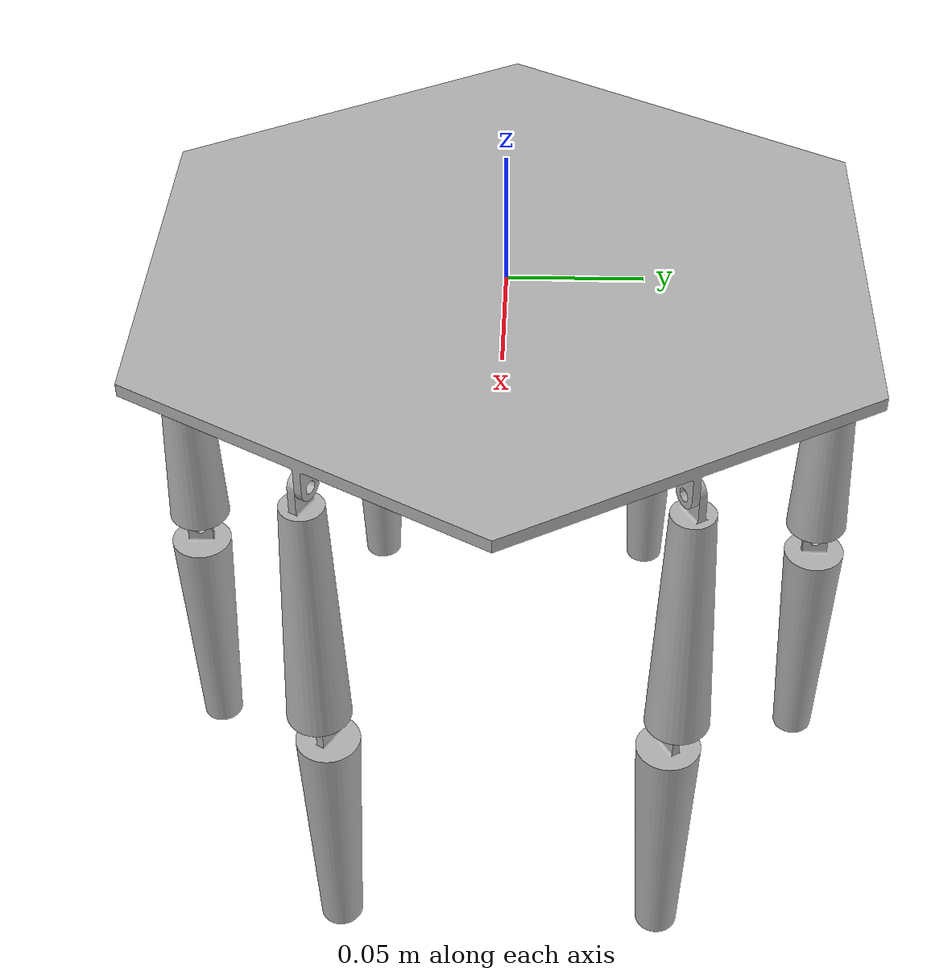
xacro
<?xml version="1.0" ?>
<robot name="crapdesign1" xmlns:xacro="http://www.ros.org/wiki/xacro">

<xacro:include filename="$(find crapdesign1_description)/urdf/materials.xacro" />
<xacro:include filename="$(find crapdesign1_description)/urdf/crapdesign1.trans" />
<xacro:include filename="$(find crapdesign1_description)/urdf/crapdesign1.gazebo" />
<link name="base_link">
  <inertial>
    <origin rpy="0 0 0" xyz="-2.7797920695261423e-16 1.6275392110627996e-16 0.2408070750718569"/>
    <mass value="2.311532628093681"/>
    <inertia ixx="0.010895" ixy="0.0" ixz="0.0" iyy="0.010895" iyz="0.0" izz="0.021777"/>
  </inertial>
  <visual>
    <origin rpy="0 0 0" xyz="0 0 0"/>
    <geometry>
      <mesh filename="package://crapdesign1_description/meshes/base_link.stl" scale="0.001 0.001 0.001"/>
    </geometry>
    <material name="silver"/>
  </visual>
  <collision>
    <origin rpy="0 0 0" xyz="0 0 0"/>
    <geometry>
      <mesh filename="package://crapdesign1_description/meshes/base_link.stl" scale="0.001 0.001 0.001"/>
    </geometry>
  </collision>
</link>

<link name="lowerleg1_1">
  <inertial>
    <origin rpy="0 0 0" xyz="0.0014999999999999142 1.8978996156604477e-07 -0.049023526239640056"/>
    <mass value="0.25197878483643155"/>
    <inertia ixx="0.000211" ixy="0.0" ixz="-0.0" iyy="0.000211" iyz="0.0" izz="1.3e-05"/>
  </inertial>
  <visual>
    <origin rpy="0 0 0" xyz="0.0015 0.124904 -0.112373"/>
    <geometry>
      <mesh filename="package://crapdesign1_description/meshes/lowerleg1_1.stl" scale="0.001 0.001 0.001"/>
    </geometry>
    <material name="silver"/>
  </visual>
  <collision>
    <origin rpy="0 0 0" xyz="0.0015 0.124904 -0.112373"/>
    <geometry>
      <mesh filename="package://crapdesign1_description/meshes/lowerleg1_1.stl" scale="0.001 0.001 0.001"/>
    </geometry>
  </collision>
</link>

<link name="upperleg2_1">
  <inertial>
    <origin rpy="0 0 0" xyz="0.0007498726713631859 0.0012990948949807915 -0.04902352623964014"/>
    <mass value="0.2519787848364315"/>
    <inertia ixx="0.000211" ixy="0.0" ixz="-0.0" iyy="0.000211" iyz="0.0" izz="1.3e-05"/>
  </inertial>
  <visual>
    <origin rpy="0 0 0" xyz="-0.10742 0.063751 -0.112373"/>
    <geometry>
      <mesh filename="package://crapdesign1_description/meshes/upperleg2_1.stl" scale="0.001 0.001 0.001"/>
    </geometry>
    <material name="silver"/>
  </visual>
  <collision>
    <origin rpy="0 0 0" xyz="-0.10742 0.063751 -0.112373"/>
    <geometry>
      <mesh filename="package://crapdesign1_description/meshes/upperleg2_1.stl" scale="0.001 0.001 0.001"/>
    </geometry>
  </collision>
</link>

<link name="lowerleg4_1">
  <inertial>
    <origin rpy="0 0 0" xyz="0.0007501273286365934 -0.0012989051050190312 -0.04902352623964018"/>
    <mass value="0.25197878483643155"/>
    <inertia ixx="0.000211" ixy="-0.0" ixz="0.0" iyy="0.000211" iyz="0.0" izz="1.3e-05"/>
  </inertial>
  <visual>
    <origin rpy="0 0 0" xyz="0.10892 0.061153 -0.112373"/>
    <geometry>
      <mesh filename="package://crapdesign1_description/meshes/lowerleg4_1.stl" scale="0.001 0.001 0.001"/>
    </geometry>
    <material name="silver"/>
  </visual>
  <collision>
    <origin rpy="0 0 0" xyz="0.10892 0.061153 -0.112373"/>
    <geometry>
      <mesh filename="package://crapdesign1_description/meshes/lowerleg4_1.stl" scale="0.001 0.001 0.001"/>
    </geometry>
  </collision>
</link>

<link name="lowerleg3_1">
  <inertial>
    <origin rpy="0 0 0" xyz="0.0007498732907923605 -0.0012990945373532112 -0.04902352623964021"/>
    <mass value="0.2519787848364316"/>
    <inertia ixx="0.000211" ixy="-0.0" ixz="0.0" iyy="0.000211" iyz="0.0" izz="1.3e-05"/>
  </inertial>
  <visual>
    <origin rpy="0 0 0" xyz="-0.10742 -0.063751 -0.112373"/>
    <geometry>
      <mesh filename="package://crapdesign1_description/meshes/lowerleg3_1.stl" scale="0.001 0.001 0.001"/>
    </geometry>
    <material name="silver"/>
  </visual>
  <collision>
    <origin rpy="0 0 0" xyz="-0.10742 -0.063751 -0.112373"/>
    <geometry>
      <mesh filename="package://crapdesign1_description/meshes/lowerleg3_1.stl" scale="0.001 0.001 0.001"/>
    </geometry>
  </collision>
</link>

<link name="lowerleg6_1">
  <inertial>
    <origin rpy="0 0 0" xyz="0.0014999999999999645 -1.8907470664131232e-07 -0.04902352623964021"/>
    <mass value="0.25197878483643155"/>
    <inertia ixx="0.000211" ixy="-0.0" ixz="-0.0" iyy="0.000211" iyz="0.0" izz="1.3e-05"/>
  </inertial>
  <visual>
    <origin rpy="0 0 0" xyz="0.0015 -0.124904 -0.112373"/>
    <geometry>
      <mesh filename="package://crapdesign1_description/meshes/lowerleg6_1.stl" scale="0.001 0.001 0.001"/>
    </geometry>
    <material name="silver"/>
  </visual>
  <collision>
    <origin rpy="0 0 0" xyz="0.0015 -0.124904 -0.112373"/>
    <geometry>
      <mesh filename="package://crapdesign1_description/meshes/lowerleg6_1.stl" scale="0.001 0.001 0.001"/>
    </geometry>
  </collision>
</link>

<link name="lowerleg5_1">
  <inertial>
    <origin rpy="0 0 0" xyz="0.0007501267092076824 0.0012989054626466323 -0.049023526239640236"/>
    <mass value="0.25197878483643155"/>
    <inertia ixx="0.000211" ixy="0.0" ixz="-0.0" iyy="0.000211" iyz="0.0" izz="1.3e-05"/>
  </inertial>
  <visual>
    <origin rpy="0 0 0" xyz="0.10892 -0.061153 -0.112373"/>
    <geometry>
      <mesh filename="package://crapdesign1_description/meshes/lowerleg5_1.stl" scale="0.001 0.001 0.001"/>
    </geometry>
    <material name="silver"/>
  </visual>
  <collision>
    <origin rpy="0 0 0" xyz="0.10892 -0.061153 -0.112373"/>
    <geometry>
      <mesh filename="package://crapdesign1_description/meshes/lowerleg5_1.stl" scale="0.001 0.001 0.001"/>
    </geometry>
  </collision>
</link>

<link name="upperleg6_1">
  <inertial>
    <origin rpy="0 0 0" xyz="-0.001500000000000007 -1.8907870720508146e-07 -0.06626642411830211"/>
    <mass value="0.25482988143393964"/>
    <inertia ixx="0.000223" ixy="-0.0" ixz="0.0" iyy="0.000222" iyz="0.0" izz="1.3e-05"/>
  </inertial>
  <visual>
    <origin rpy="0 0 0" xyz="0.0015 -0.124904 -0.228373"/>
    <geometry>
      <mesh filename="package://crapdesign1_description/meshes/upperleg6_1.stl" scale="0.001 0.001 0.001"/>
    </geometry>
    <material name="silver"/>
  </visual>
  <collision>
    <origin rpy="0 0 0" xyz="0.0015 -0.124904 -0.228373"/>
    <geometry>
      <mesh filename="package://crapdesign1_description/meshes/upperleg6_1.stl" scale="0.001 0.001 0.001"/>
    </geometry>
  </collision>
</link>

<link name="upperleg3_1">
  <inertial>
    <origin rpy="0 0 0" xyz="-0.0007501267126726469 0.001298981671999641 -0.0662664241183023"/>
    <mass value="0.2548298814339397"/>
    <inertia ixx="0.000223" ixy="-0.0" ixz="0.0" iyy="0.000223" iyz="0.0" izz="1.3e-05"/>
  </inertial>
  <visual>
    <origin rpy="0 0 0" xyz="-0.10742 -0.063751 -0.228373"/>
    <geometry>
      <mesh filename="package://crapdesign1_description/meshes/upperleg3_1.stl" scale="0.001 0.001 0.001"/>
    </geometry>
    <material name="silver"/>
  </visual>
  <collision>
    <origin rpy="0 0 0" xyz="-0.10742 -0.063751 -0.228373"/>
    <geometry>
      <mesh filename="package://crapdesign1_description/meshes/upperleg3_1.stl" scale="0.001 0.001 0.001"/>
    </geometry>
  </collision>
</link>

<link name="upperleg1_1">
  <inertial>
    <origin rpy="0 0 0" xyz="-0.0015000000000000438 1.8978596048879748e-07 -0.06626642411830236"/>
    <mass value="0.25482988143393986"/>
    <inertia ixx="0.000223" ixy="0.0" ixz="-0.0" iyy="0.000222" iyz="0.0" izz="1.3e-05"/>
  </inertial>
  <visual>
    <origin rpy="0 0 0" xyz="0.0015 0.124904 -0.228373"/>
    <geometry>
      <mesh filename="package://crapdesign1_description/meshes/upperleg1_1.stl" scale="0.001 0.001 0.001"/>
    </geometry>
    <material name="silver"/>
  </visual>
  <collision>
    <origin rpy="0 0 0" xyz="0.0015 0.124904 -0.228373"/>
    <geometry>
      <mesh filename="package://crapdesign1_description/meshes/upperleg1_1.stl" scale="0.001 0.001 0.001"/>
    </geometry>
  </collision>
</link>

<link name="upperleg5_1">
  <inertial>
    <origin rpy="0 0 0" xyz="-0.000749873287327521 -0.001299170750706527 -0.06626642411830222"/>
    <mass value="0.25482988143393964"/>
    <inertia ixx="0.000223" ixy="0.0" ixz="-0.0" iyy="0.000223" iyz="0.0" izz="1.3e-05"/>
  </inertial>
  <visual>
    <origin rpy="0 0 0" xyz="0.10892 -0.061153 -0.228373"/>
    <geometry>
      <mesh filename="package://crapdesign1_description/meshes/upperleg5_1.stl" scale="0.001 0.001 0.001"/>
    </geometry>
    <material name="silver"/>
  </visual>
  <collision>
    <origin rpy="0 0 0" xyz="0.10892 -0.061153 -0.228373"/>
    <geometry>
      <mesh filename="package://crapdesign1_description/meshes/upperleg5_1.stl" scale="0.001 0.001 0.001"/>
    </geometry>
  </collision>
</link>

<link name="lowerleg2_1">
  <inertial>
    <origin rpy="0 0 0" xyz="-0.0007501273251715596 -0.0012989813183730409 -0.0662664241183025"/>
    <mass value="0.2548298814339398"/>
    <inertia ixx="0.000223" ixy="0.0" ixz="-0.0" iyy="0.000223" iyz="0.0" izz="1.3e-05"/>
  </inertial>
  <visual>
    <origin rpy="0 0 0" xyz="-0.10742 0.063751 -0.228373"/>
    <geometry>
      <mesh filename="package://crapdesign1_description/meshes/lowerleg2_1.stl" scale="0.001 0.001 0.001"/>
    </geometry>
    <material name="silver"/>
  </visual>
  <collision>
    <origin rpy="0 0 0" xyz="-0.10742 0.063751 -0.228373"/>
    <geometry>
      <mesh filename="package://crapdesign1_description/meshes/lowerleg2_1.stl" scale="0.001 0.001 0.001"/>
    </geometry>
  </collision>
</link>

<link name="upperleg4_1">
  <inertial>
    <origin rpy="0 0 0" xyz="-0.0007498726748281365 0.0012991711043335158 -0.0662664241183023"/>
    <mass value="0.25482988143393964"/>
    <inertia ixx="0.000223" ixy="-0.0" ixz="0.0" iyy="0.000223" iyz="0.0" izz="1.3e-05"/>
  </inertial>
  <visual>
    <origin rpy="0 0 0" xyz="0.10892 0.061153 -0.228373"/>
    <geometry>
      <mesh filename="package://crapdesign1_description/meshes/upperleg4_1.stl" scale="0.001 0.001 0.001"/>
    </geometry>
    <material name="silver"/>
  </visual>
  <collision>
    <origin rpy="0 0 0" xyz="0.10892 0.061153 -0.228373"/>
    <geometry>
      <mesh filename="package://crapdesign1_description/meshes/upperleg4_1.stl" scale="0.001 0.001 0.001"/>
    </geometry>
  </collision>
</link>

<joint name="Rev1" type="revolute">
  <origin rpy="0 0 0" xyz="0.0 0.0 -0.116"/>
  <parent link="upperleg1_1"/>
  <child link="lowerleg1_1"/>
  <axis xyz="-1.0 -0.0 0.0"/>
  <limit effort="100" lower="0.0" upper="0.785398" velocity="100"/>
</joint>

<joint name="Rev2" type="revolute">
  <origin rpy="0 0 0" xyz="0.0 0.0 -0.116"/>
  <parent link="lowerleg2_1"/>
  <child link="upperleg2_1"/>
  <axis xyz="-0.5 -0.866025 0.0"/>
  <limit effort="100" lower="0.0" upper="0.785398" velocity="100"/>
</joint>

<joint name="Rev3" type="revolute">
  <origin rpy="0 0 0" xyz="0.0 0.0 -0.116"/>
  <parent link="upperleg4_1"/>
  <child link="lowerleg4_1"/>
  <axis xyz="-0.5 0.866025 -0.0"/>
  <limit effort="100" lower="0.0" upper="0.785398" velocity="100"/>
</joint>

<joint name="Rev4" type="revolute">
  <origin rpy="0 0 0" xyz="0.0 0.0 -0.116"/>
  <parent link="upperleg3_1"/>
  <child link="lowerleg3_1"/>
  <axis xyz="-0.5 0.866025 -0.0"/>
  <limit effort="100" lower="0.0" upper="0.785398" velocity="100"/>
</joint>

<joint name="Rev5" type="revolute">
  <origin rpy="0 0 0" xyz="0.0 0.0 -0.116"/>
  <parent link="upperleg6_1"/>
  <child link="lowerleg6_1"/>
  <axis xyz="-1.0 0.0 -0.0"/>
  <limit effort="100" lower="0.0" upper="0.785398" velocity="100"/>
</joint>

<joint name="Rev6" type="revolute">
  <origin rpy="0 0 0" xyz="0.0 0.0 -0.116"/>
  <parent link="upperleg5_1"/>
  <child link="lowerleg5_1"/>
  <axis xyz="-0.5 -0.866025 0.0"/>
  <limit effort="100" lower="0.0" upper="0.785398" velocity="100"/>
</joint>

<joint name="Rev7" type="revolute">
  <origin rpy="0 0 0" xyz="-0.0015 0.124904 0.228373"/>
  <parent link="base_link"/>
  <child link="upperleg6_1"/>
  <axis xyz="1.0 0.0 -0.0"/>
  <limit effort="100" lower="0.0" upper="0.785398" velocity="100"/>
</joint>

<joint name="Rev8" type="revolute">
  <origin rpy="0 0 0" xyz="0.10742 0.063751 0.228373"/>
  <parent link="base_link"/>
  <child link="upperleg3_1"/>
  <axis xyz="0.5 -0.866025 0.0"/>
  <limit effort="100" lower="0.0" upper="0.785398" velocity="100"/>
</joint>

<joint name="Rev9" type="revolute">
  <origin rpy="0 0 0" xyz="-0.0015 -0.124904 0.228373"/>
  <parent link="base_link"/>
  <child link="upperleg1_1"/>
  <axis xyz="1.0 0.0 -0.0"/>
  <limit effort="100" lower="-0.785398" upper="0.0" velocity="100"/>
</joint>

<joint name="Rev10" type="revolute">
  <origin rpy="0 0 0" xyz="-0.10892 0.061153 0.228373"/>
  <parent link="base_link"/>
  <child link="upperleg5_1"/>
  <axis xyz="0.5 0.866025 -0.0"/>
  <limit effort="100" lower="0.0" upper="0.785398" velocity="100"/>
</joint>

<joint name="Rev11" type="revolute">
  <origin rpy="0 0 0" xyz="0.10742 -0.063751 0.228373"/>
  <parent link="base_link"/>
  <child link="lowerleg2_1"/>
  <axis xyz="0.5 0.866025 -0.0"/>
  <limit effort="100" lower="-0.785398" upper="0.0" velocity="100"/>
</joint>

<joint name="Rev12" type="revolute">
  <origin rpy="0 0 0" xyz="-0.10892 -0.061153 0.228373"/>
  <parent link="base_link"/>
  <child link="upperleg4_1"/>
  <axis xyz="0.5 -0.866025 0.0"/>
  <limit effort="100" lower="-0.785398" upper="0.0" velocity="100"/>
</joint>

</robot>

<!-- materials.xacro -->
<robot name="crapdesign1" xmlns:xacro="http://www.ros.org/wiki/xacro" >

<material name="silver">
  <color rgba="0.700 0.700 0.700 1.000"/>
</material>

</robot>

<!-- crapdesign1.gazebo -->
<robot name="crapdesign1" xmlns:xacro="http://www.ros.org/wiki/xacro" >

<xacro:property name="body_color" value="Gazebo/Silver" />

<gazebo>
  <plugin filename="libgazebo_ros_control.so" name="control"/>
</gazebo>
<gazebo reference="base_link">
  <material>${body_color}</material>
  <mu1>0.2</mu1>
  <mu2>0.2</mu2>
  <selfCollide>true</selfCollide>
  <gravity>true</gravity>
</gazebo>

<gazebo reference="lowerleg1_1">
  <material>${body_color}</material>
  <mu1>0.2</mu1>
  <mu2>0.2</mu2>
  <selfCollide>true</selfCollide>
</gazebo>

<gazebo reference="upperleg2_1">
  <material>${body_color}</material>
  <mu1>0.2</mu1>
  <mu2>0.2</mu2>
  <selfCollide>true</selfCollide>
</gazebo>

<gazebo reference="lowerleg4_1">
  <material>${body_color}</material>
  <mu1>0.2</mu1>
  <mu2>0.2</mu2>
  <selfCollide>true</selfCollide>
</gazebo>

<gazebo reference="lowerleg3_1">
  <material>${body_color}</material>
  <mu1>0.2</mu1>
  <mu2>0.2</mu2>
  <selfCollide>true</selfCollide>
</gazebo>

<gazebo reference="lowerleg6_1">
  <material>${body_color}</material>
  <mu1>0.2</mu1>
  <mu2>0.2</mu2>
  <selfCollide>true</selfCollide>
</gazebo>

<gazebo reference="lowerleg5_1">
  <material>${body_color}</material>
  <mu1>0.2</mu1>
  <mu2>0.2</mu2>
  <selfCollide>true</selfCollide>
</gazebo>

<gazebo reference="upperleg6_1">
  <material>${body_color}</material>
  <mu1>0.2</mu1>
  <mu2>0.2</mu2>
  <selfCollide>true</selfCollide>
</gazebo>

<gazebo reference="upperleg3_1">
  <material>${body_color}</material>
  <mu1>0.2</mu1>
  <mu2>0.2</mu2>
  <selfCollide>true</selfCollide>
</gazebo>

<gazebo reference="upperleg1_1">
  <material>${body_color}</material>
  <mu1>0.2</mu1>
  <mu2>0.2</mu2>
  <selfCollide>true</selfCollide>
</gazebo>

<gazebo reference="upperleg5_1">
  <material>${body_color}</material>
  <mu1>0.2</mu1>
  <mu2>0.2</mu2>
  <selfCollide>true</selfCollide>
</gazebo>

<gazebo reference="lowerleg2_1">
  <material>${body_color}</material>
  <mu1>0.2</mu1>
  <mu2>0.2</mu2>
  <selfCollide>true</selfCollide>
</gazebo>

<gazebo reference="upperleg4_1">
  <material>${body_color}</material>
  <mu1>0.2</mu1>
  <mu2>0.2</mu2>
  <selfCollide>true</selfCollide>
</gazebo>

</robot>
